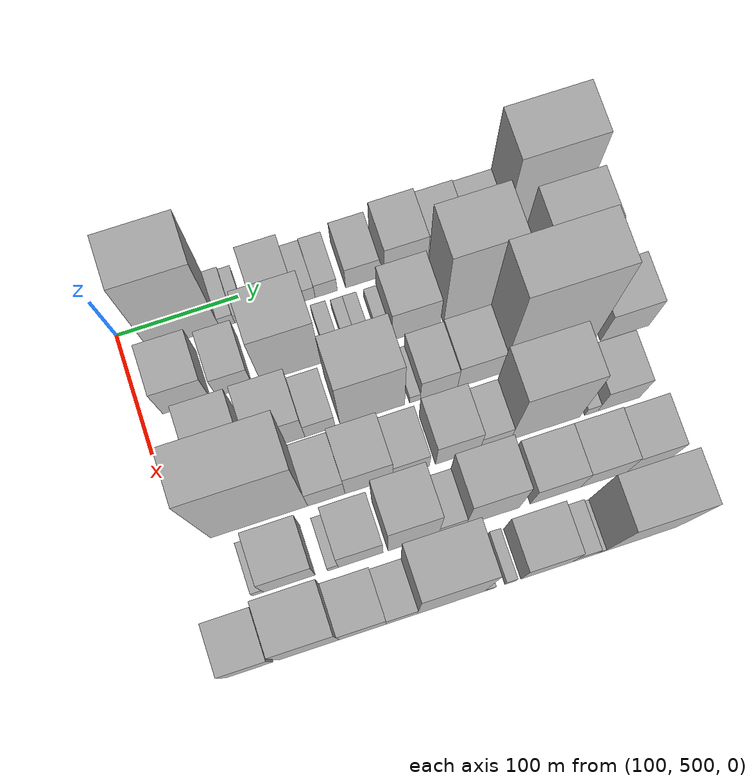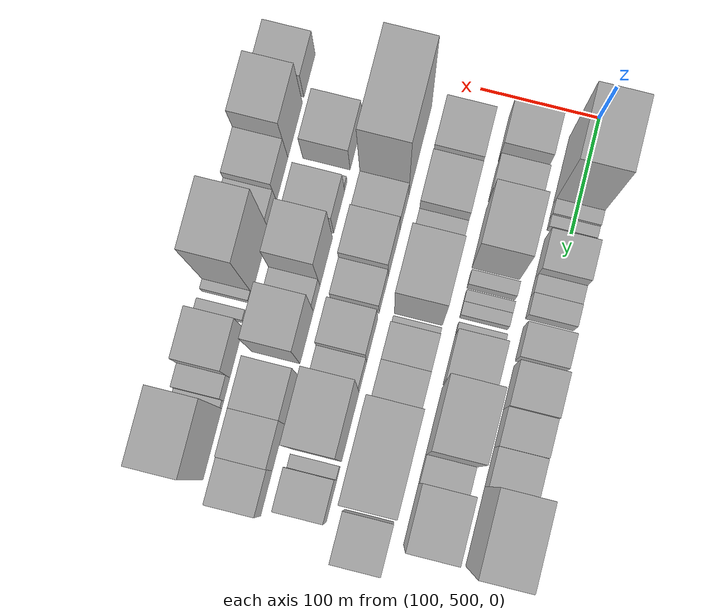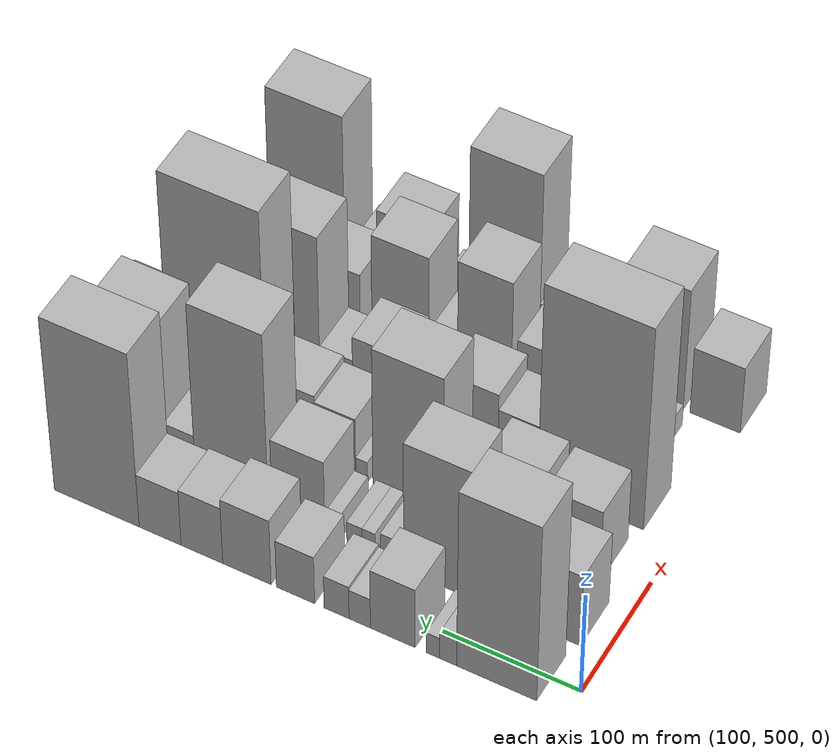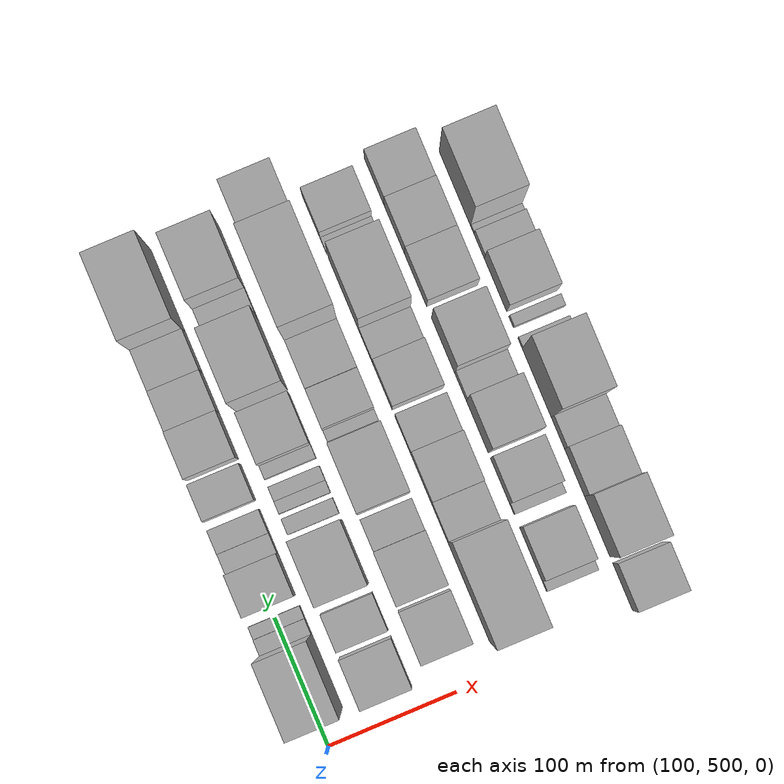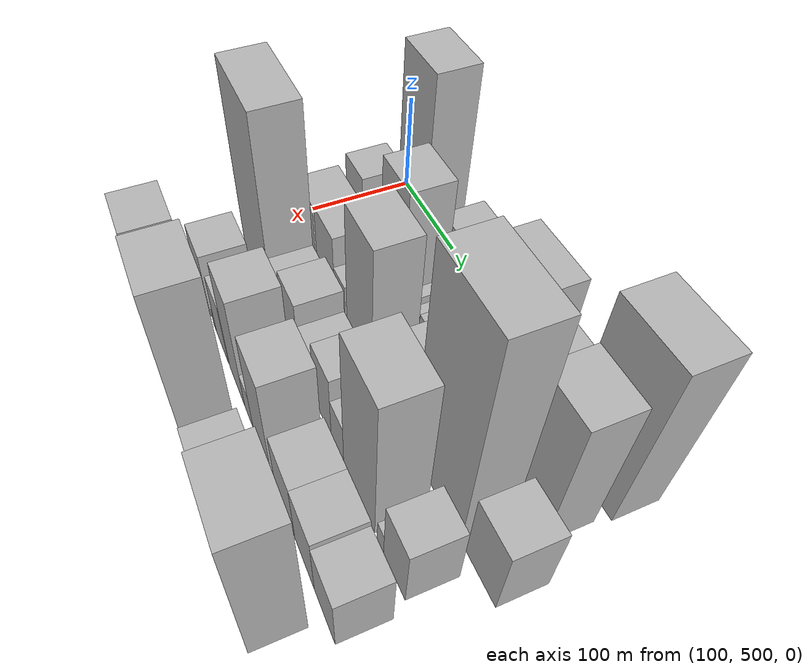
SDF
<sdf version="1.6">
 <world name="default">
  <model name="building_43">
   <static>1</static>
   <pose>100.0000 550.5331 0 0.000000 0.000000 0.000000</pose>
   <link name="link">
    <pose>0 0 88.50 0 0 0</pose>
    <collision name="collision"><geometry><box><size>40.0000 57.6793 177.0000</size></box></geometry></collision>
    <visual name="visual">
     <cast_shadows>0</cast_shadows>
     <geometry><box><size>40.0000 57.6793 177.0000</size></box></geometry>
     <material>
      <script>
       <uri>model://HANNAS_wall/materials/scripts</uri>
       <uri>model://HANNAS_wall/materials/textures</uri>
       <name>vrc/HANNAS_wall</name>
      </script>
     </material>
    </visual>
   </link>
  </model>
  <model name="building_44">
   <static>1</static>
   <pose>100.0000 585.5421 0 0.000000 0.000000 0.000000</pose>
   <link name="link">
    <pose>0 0 13.50 0 0 0</pose>
    <collision name="collision"><geometry><box><size>40.0000 12.3388 27.0000</size></box></geometry></collision>
    <visual name="visual">
     <cast_shadows>0</cast_shadows>
     <geometry><box><size>40.0000 12.3388 27.0000</size></box></geometry>
     <material>
      <script>
       <uri>model://HANNAS_wall/materials/scripts</uri>
       <uri>model://HANNAS_wall/materials/textures</uri>
       <name>vrc/HANNAS_wall</name>
      </script>
     </material>
    </visual>
   </link>
  </model>
  <model name="building_45">
   <static>1</static>
   <pose>100.0000 596.5791 0 0.000000 0.000000 0.000000</pose>
   <link name="link">
    <pose>0 0 10.50 0 0 0</pose>
    <collision name="collision"><geometry><box><size>40.0000 9.7352 21.0000</size></box></geometry></collision>
    <visual name="visual">
     <cast_shadows>0</cast_shadows>
     <geometry><box><size>40.0000 9.7352 21.0000</size></box></geometry>
     <material>
      <script>
       <uri>model://HANNAS_wall/materials/scripts</uri>
       <uri>model://HANNAS_wall/materials/textures</uri>
       <name>vrc/HANNAS_wall</name>
      </script>
     </material>
    </visual>
   </link>
  </model>
  <model name="building_46">
   <static>1</static>
   <pose>100.0000 625.8755 0 0.000000 0.000000 0.000000</pose>
   <link name="link">
    <pose>0 0 30.00 0 0 0</pose>
    <collision name="collision"><geometry><box><size>40.0000 32.8577 60.0000</size></box></geometry></collision>
    <visual name="visual">
     <cast_shadows>0</cast_shadows>
     <geometry><box><size>40.0000 32.8577 60.0000</size></box></geometry>
     <material>
      <script>
       <uri>model://HANNAS_wall/materials/scripts</uri>
       <uri>model://HANNAS_wall/materials/textures</uri>
       <name>vrc/HANNAS_wall</name>
      </script>
     </material>
    </visual>
   </link>
  </model>
  <model name="building_47">
   <static>1</static>
   <pose>100.0000 650.1527 0 0.000000 0.000000 0.000000</pose>
   <link name="link">
    <pose>0 0 15.00 0 0 0</pose>
    <collision name="collision"><geometry><box><size>40.0000 15.6966 30.0000</size></box></geometry></collision>
    <visual name="visual">
     <cast_shadows>0</cast_shadows>
     <geometry><box><size>40.0000 15.6966 30.0000</size></box></geometry>
     <material>
      <script>
       <uri>model://HANNAS_wall/materials/scripts</uri>
       <uri>model://HANNAS_wall/materials/textures</uri>
       <name>vrc/HANNAS_wall</name>
      </script>
     </material>
    </visual>
   </link>
  </model>
  <model name="building_48">
   <static>1</static>
   <pose>100.0000 667.2027 0 0.000000 0.000000 0.000000</pose>
   <link name="link">
    <pose>0 0 16.50 0 0 0</pose>
    <collision name="collision"><geometry><box><size>40.0000 18.4036 33.0000</size></box></geometry></collision>
    <visual name="visual">
     <cast_shadows>0</cast_shadows>
     <geometry><box><size>40.0000 18.4036 33.0000</size></box></geometry>
     <material>
      <script>
       <uri>model://HANNAS_wall/materials/scripts</uri>
       <uri>model://HANNAS_wall/materials/textures</uri>
       <name>vrc/HANNAS_wall</name>
      </script>
     </material>
    </visual>
   </link>
  </model>
  <model name="building_49">
   <static>1</static>
   <pose>100.0000 697.5780 0 0.000000 0.000000 0.000000</pose>
   <link name="link">
    <pose>0 0 24.00 0 0 0</pose>
    <collision name="collision"><geometry><box><size>40.0000 28.3470 48.0000</size></box></geometry></collision>
    <visual name="visual">
     <cast_shadows>0</cast_shadows>
     <geometry><box><size>40.0000 28.3470 48.0000</size></box></geometry>
     <material>
      <script>
       <uri>model://HANNAS_wall/materials/scripts</uri>
       <uri>model://HANNAS_wall/materials/textures</uri>
       <name>vrc/HANNAS_wall</name>
      </script>
     </material>
    </visual>
   </link>
  </model>
  <model name="building_50">
   <static>1</static>
   <pose>100.0000 733.8531 0 0.000000 0.000000 0.000000</pose>
   <link name="link">
    <pose>0 0 33.00 0 0 0</pose>
    <collision name="collision"><geometry><box><size>40.0000 36.2032 66.0000</size></box></geometry></collision>
    <visual name="visual">
     <cast_shadows>0</cast_shadows>
     <geometry><box><size>40.0000 36.2032 66.0000</size></box></geometry>
     <material>
      <script>
       <uri>model://HANNAS_wall/materials/scripts</uri>
       <uri>model://HANNAS_wall/materials/textures</uri>
       <name>vrc/HANNAS_wall</name>
      </script>
     </material>
    </visual>
   </link>
  </model>
  <model name="building_51">
   <static>1</static>
   <pose>100.0000 767.6744 0 0.000000 0.000000 0.000000</pose>
   <link name="link">
    <pose>0 0 28.50 0 0 0</pose>
    <collision name="collision"><geometry><box><size>40.0000 31.4392 57.0000</size></box></geometry></collision>
    <visual name="visual">
     <cast_shadows>0</cast_shadows>
     <geometry><box><size>40.0000 31.4392 57.0000</size></box></geometry>
     <material>
      <script>
       <uri>model://HANNAS_wall/materials/scripts</uri>
       <uri>model://HANNAS_wall/materials/textures</uri>
       <name>vrc/HANNAS_wall</name>
      </script>
     </material>
    </visual>
   </link>
  </model>
  <model name="building_52">
   <static>1</static>
   <pose>100.0000 799.3085 0 0.000000 0.000000 0.000000</pose>
   <link name="link">
    <pose>0 0 27.00 0 0 0</pose>
    <collision name="collision"><geometry><box><size>40.0000 31.8290 54.0000</size></box></geometry></collision>
    <visual name="visual">
     <cast_shadows>0</cast_shadows>
     <geometry><box><size>40.0000 31.8290 54.0000</size></box></geometry>
     <material>
      <script>
       <uri>model://HANNAS_wall/materials/scripts</uri>
       <uri>model://HANNAS_wall/materials/textures</uri>
       <name>vrc/HANNAS_wall</name>
      </script>
     </material>
    </visual>
   </link>
  </model>
  <model name="building_53">
   <static>1</static>
   <pose>100.0000 847.6762 0 0.000000 0.000000 0.000000</pose>
   <link name="link">
    <pose>0 0 87.00 0 0 0</pose>
    <collision name="collision"><geometry><box><size>40.0000 64.9065 174.0000</size></box></geometry></collision>
    <visual name="visual">
     <cast_shadows>0</cast_shadows>
     <geometry><box><size>40.0000 64.9065 174.0000</size></box></geometry>
     <material>
      <script>
       <uri>model://HANNAS_wall/materials/scripts</uri>
       <uri>model://HANNAS_wall/materials/textures</uri>
       <name>vrc/HANNAS_wall</name>
      </script>
     </material>
    </visual>
   </link>
  </model>
  <model name="building_92">
   <static>1</static>
   <pose>152.0000 536.4825 0 0.000000 0.000000 0.000000</pose>
   <link name="link">
    <pose>0 0 36.00 0 0 0</pose>
    <collision name="collision"><geometry><box><size>40.0000 38.8584 72.0000</size></box></geometry></collision>
    <visual name="visual">
     <cast_shadows>0</cast_shadows>
     <geometry><box><size>40.0000 38.8584 72.0000</size></box></geometry>
     <material>
      <script>
       <uri>model://HANNAS_wall/materials/scripts</uri>
       <uri>model://HANNAS_wall/materials/textures</uri>
       <name>vrc/HANNAS_wall</name>
      </script>
     </material>
    </visual>
   </link>
  </model>
  <model name="building_93">
   <static>1</static>
   <pose>152.0000 575.5180 0 0.000000 0.000000 0.000000</pose>
   <link name="link">
    <pose>0 0 28.50 0 0 0</pose>
    <collision name="collision"><geometry><box><size>40.0000 29.2126 57.0000</size></box></geometry></collision>
    <visual name="visual">
     <cast_shadows>0</cast_shadows>
     <geometry><box><size>40.0000 29.2126 57.0000</size></box></geometry>
     <material>
      <script>
       <uri>model://HANNAS_wall/materials/scripts</uri>
       <uri>model://HANNAS_wall/materials/textures</uri>
       <name>vrc/HANNAS_wall</name>
      </script>
     </material>
    </visual>
   </link>
  </model>
  <model name="building_94">
   <static>1</static>
   <pose>152.0000 621.7858 0 0.000000 0.000000 0.000000</pose>
   <link name="link">
    <pose>0 0 64.50 0 0 0</pose>
    <collision name="collision"><geometry><box><size>40.0000 49.3231 129.0000</size></box></geometry></collision>
    <visual name="visual">
     <cast_shadows>0</cast_shadows>
     <geometry><box><size>40.0000 49.3231 129.0000</size></box></geometry>
     <material>
      <script>
       <uri>model://HANNAS_wall/materials/scripts</uri>
       <uri>model://HANNAS_wall/materials/textures</uri>
       <name>vrc/HANNAS_wall</name>
      </script>
     </material>
    </visual>
   </link>
  </model>
  <model name="building_95">
   <static>1</static>
   <pose>152.0000 657.5279 0 0.000000 0.000000 0.000000</pose>
   <link name="link">
    <pose>0 0 13.50 0 0 0</pose>
    <collision name="collision"><geometry><box><size>40.0000 12.1610 27.0000</size></box></geometry></collision>
    <visual name="visual">
     <cast_shadows>0</cast_shadows>
     <geometry><box><size>40.0000 12.1610 27.0000</size></box></geometry>
     <material>
      <script>
       <uri>model://HANNAS_wall/materials/scripts</uri>
       <uri>model://HANNAS_wall/materials/textures</uri>
       <name>vrc/HANNAS_wall</name>
      </script>
     </material>
    </visual>
   </link>
  </model>
  <model name="building_96">
   <static>1</static>
   <pose>152.0000 672.4310 0 0.000000 0.000000 0.000000</pose>
   <link name="link">
    <pose>0 0 12.00 0 0 0</pose>
    <collision name="collision"><geometry><box><size>40.0000 9.6453 24.0000</size></box></geometry></collision>
    <visual name="visual">
     <cast_shadows>0</cast_shadows>
     <geometry><box><size>40.0000 9.6453 24.0000</size></box></geometry>
     <material>
      <script>
       <uri>model://HANNAS_wall/materials/scripts</uri>
       <uri>model://HANNAS_wall/materials/textures</uri>
       <name>vrc/HANNAS_wall</name>
      </script>
     </material>
    </visual>
   </link>
  </model>
  <model name="building_97">
   <static>1</static>
   <pose>152.0000 682.8885 0 0.000000 0.000000 0.000000</pose>
   <link name="link">
    <pose>0 0 12.00 0 0 0</pose>
    <collision name="collision"><geometry><box><size>40.0000 11.2697 24.0000</size></box></geometry></collision>
    <visual name="visual">
     <cast_shadows>0</cast_shadows>
     <geometry><box><size>40.0000 11.2697 24.0000</size></box></geometry>
     <material>
      <script>
       <uri>model://HANNAS_wall/materials/scripts</uri>
       <uri>model://HANNAS_wall/materials/textures</uri>
       <name>vrc/HANNAS_wall</name>
      </script>
     </material>
    </visual>
   </link>
  </model>
  <model name="building_98">
   <static>1</static>
   <pose>152.0000 699.7544 0 0.000000 0.000000 0.000000</pose>
   <link name="link">
    <pose>0 0 12.00 0 0 0</pose>
    <collision name="collision"><geometry><box><size>40.0000 10.4621 24.0000</size></box></geometry></collision>
    <visual name="visual">
     <cast_shadows>0</cast_shadows>
     <geometry><box><size>40.0000 10.4621 24.0000</size></box></geometry>
     <material>
      <script>
       <uri>model://HANNAS_wall/materials/scripts</uri>
       <uri>model://HANNAS_wall/materials/textures</uri>
       <name>vrc/HANNAS_wall</name>
      </script>
     </material>
    </visual>
   </link>
  </model>
  <model name="building_99">
   <static>1</static>
   <pose>152.0000 724.7930 0 0.000000 0.000000 0.000000</pose>
   <link name="link">
    <pose>0 0 37.50 0 0 0</pose>
    <collision name="collision"><geometry><box><size>40.0000 39.6151 75.0000</size></box></geometry></collision>
    <visual name="visual">
     <cast_shadows>0</cast_shadows>
     <geometry><box><size>40.0000 39.6151 75.0000</size></box></geometry>
     <material>
      <script>
       <uri>model://HANNAS_wall/materials/scripts</uri>
       <uri>model://HANNAS_wall/materials/textures</uri>
       <name>vrc/HANNAS_wall</name>
      </script>
     </material>
    </visual>
   </link>
  </model>
  <model name="building_100">
   <static>1</static>
   <pose>152.0000 775.2341 0 0.000000 0.000000 0.000000</pose>
   <link name="link">
    <pose>0 0 88.50 0 0 0</pose>
    <collision name="collision"><geometry><box><size>40.0000 55.2671 177.0000</size></box></geometry></collision>
    <visual name="visual">
     <cast_shadows>0</cast_shadows>
     <geometry><box><size>40.0000 55.2671 177.0000</size></box></geometry>
     <material>
      <script>
       <uri>model://HANNAS_wall/materials/scripts</uri>
       <uri>model://HANNAS_wall/materials/textures</uri>
       <name>vrc/HANNAS_wall</name>
      </script>
     </material>
    </visual>
   </link>
  </model>
  <model name="building_101">
   <static>1</static>
   <pose>152.0000 814.1956 0 0.000000 0.000000 0.000000</pose>
   <link name="link">
    <pose>0 0 22.50 0 0 0</pose>
    <collision name="collision"><geometry><box><size>40.0000 22.6560 45.0000</size></box></geometry></collision>
    <visual name="visual">
     <cast_shadows>0</cast_shadows>
     <geometry><box><size>40.0000 22.6560 45.0000</size></box></geometry>
     <material>
      <script>
       <uri>model://HANNAS_wall/materials/scripts</uri>
       <uri>model://HANNAS_wall/materials/textures</uri>
       <name>vrc/HANNAS_wall</name>
      </script>
     </material>
    </visual>
   </link>
  </model>
  <model name="building_102">
   <static>1</static>
   <pose>152.0000 850.6613 0 0.000000 0.000000 0.000000</pose>
   <link name="link">
    <pose>0 0 72.00 0 0 0</pose>
    <collision name="collision"><geometry><box><size>40.0000 50.2754 144.0000</size></box></geometry></collision>
    <visual name="visual">
     <cast_shadows>0</cast_shadows>
     <geometry><box><size>40.0000 50.2754 144.0000</size></box></geometry>
     <material>
      <script>
       <uri>model://HANNAS_wall/materials/scripts</uri>
       <uri>model://HANNAS_wall/materials/textures</uri>
       <name>vrc/HANNAS_wall</name>
      </script>
     </material>
    </visual>
   </link>
  </model>
  <model name="building_144">
   <static>1</static>
   <pose>204.0000 550.2137 0 0.000000 0.000000 0.000000</pose>
   <link name="link">
    <pose>0 0 36.00 0 0 0</pose>
    <collision name="collision"><geometry><box><size>40.0000 40.9323 72.0000</size></box></geometry></collision>
    <visual name="visual">
     <cast_shadows>0</cast_shadows>
     <geometry><box><size>40.0000 40.9323 72.0000</size></box></geometry>
     <material>
      <script>
       <uri>model://HANNAS_wall/materials/scripts</uri>
       <uri>model://HANNAS_wall/materials/textures</uri>
       <name>vrc/HANNAS_wall</name>
      </script>
     </material>
    </visual>
   </link>
  </model>
  <model name="building_145">
   <static>1</static>
   <pose>204.0000 595.6306 0 0.000000 0.000000 0.000000</pose>
   <link name="link">
    <pose>0 0 37.50 0 0 0</pose>
    <collision name="collision"><geometry><box><size>40.0000 41.9016 75.0000</size></box></geometry></collision>
    <visual name="visual">
     <cast_shadows>0</cast_shadows>
     <geometry><box><size>40.0000 41.9016 75.0000</size></box></geometry>
     <material>
      <script>
       <uri>model://HANNAS_wall/materials/scripts</uri>
       <uri>model://HANNAS_wall/materials/textures</uri>
       <name>vrc/HANNAS_wall</name>
      </script>
     </material>
    </visual>
   </link>
  </model>
  <model name="building_146">
   <static>1</static>
   <pose>204.0000 628.9667 0 0.000000 0.000000 0.000000</pose>
   <link name="link">
    <pose>0 0 21.00 0 0 0</pose>
    <collision name="collision"><geometry><box><size>40.0000 24.7705 42.0000</size></box></geometry></collision>
    <visual name="visual">
     <cast_shadows>0</cast_shadows>
     <geometry><box><size>40.0000 24.7705 42.0000</size></box></geometry>
     <material>
      <script>
       <uri>model://HANNAS_wall/materials/scripts</uri>
       <uri>model://HANNAS_wall/materials/textures</uri>
       <name>vrc/HANNAS_wall</name>
      </script>
     </material>
    </visual>
   </link>
  </model>
  <model name="building_147">
   <static>1</static>
   <pose>204.0000 671.6703 0 0.000000 0.000000 0.000000</pose>
   <link name="link">
    <pose>0 0 69.00 0 0 0</pose>
    <collision name="collision"><geometry><box><size>40.0000 52.6367 138.0000</size></box></geometry></collision>
    <visual name="visual">
     <cast_shadows>0</cast_shadows>
     <geometry><box><size>40.0000 52.6367 138.0000</size></box></geometry>
     <material>
      <script>
       <uri>model://HANNAS_wall/materials/scripts</uri>
       <uri>model://HANNAS_wall/materials/textures</uri>
       <name>vrc/HANNAS_wall</name>
      </script>
     </material>
    </visual>
   </link>
  </model>
  <model name="building_148">
   <static>1</static>
   <pose>204.0000 706.4081 0 0.000000 0.000000 0.000000</pose>
   <link name="link">
    <pose>0 0 10.50 0 0 0</pose>
    <collision name="collision"><geometry><box><size>40.0000 8.8390 21.0000</size></box></geometry></collision>
    <visual name="visual">
     <cast_shadows>0</cast_shadows>
     <geometry><box><size>40.0000 8.8390 21.0000</size></box></geometry>
     <material>
      <script>
       <uri>model://HANNAS_wall/materials/scripts</uri>
       <uri>model://HANNAS_wall/materials/textures</uri>
       <name>vrc/HANNAS_wall</name>
      </script>
     </material>
    </visual>
   </link>
  </model>
  <model name="building_149">
   <static>1</static>
   <pose>204.0000 726.1357 0 0.000000 0.000000 0.000000</pose>
   <link name="link">
    <pose>0 0 30.00 0 0 0</pose>
    <collision name="collision"><geometry><box><size>40.0000 30.6161 60.0000</size></box></geometry></collision>
    <visual name="visual">
     <cast_shadows>0</cast_shadows>
     <geometry><box><size>40.0000 30.6161 60.0000</size></box></geometry>
     <material>
      <script>
       <uri>model://HANNAS_wall/materials/scripts</uri>
       <uri>model://HANNAS_wall/materials/textures</uri>
       <name>vrc/HANNAS_wall</name>
      </script>
     </material>
    </visual>
   </link>
  </model>
  <model name="building_150">
   <static>1</static>
   <pose>204.0000 759.9601 0 0.000000 0.000000 0.000000</pose>
   <link name="link">
    <pose>0 0 33.00 0 0 0</pose>
    <collision name="collision"><geometry><box><size>40.0000 37.0328 66.0000</size></box></geometry></collision>
    <visual name="visual">
     <cast_shadows>0</cast_shadows>
     <geometry><box><size>40.0000 37.0328 66.0000</size></box></geometry>
     <material>
      <script>
       <uri>model://HANNAS_wall/materials/scripts</uri>
       <uri>model://HANNAS_wall/materials/textures</uri>
       <name>vrc/HANNAS_wall</name>
      </script>
     </material>
    </visual>
   </link>
  </model>
  <model name="building_151">
   <static>1</static>
   <pose>204.0000 815.7794 0 0.000000 0.000000 0.000000</pose>
   <link name="link">
    <pose>0 0 112.50 0 0 0</pose>
    <collision name="collision"><geometry><box><size>40.0000 74.6058 225.0000</size></box></geometry></collision>
    <visual name="visual">
     <cast_shadows>0</cast_shadows>
     <geometry><box><size>40.0000 74.6058 225.0000</size></box></geometry>
     <material>
      <script>
       <uri>model://HANNAS_wall/materials/scripts</uri>
       <uri>model://HANNAS_wall/materials/textures</uri>
       <name>vrc/HANNAS_wall</name>
      </script>
     </material>
    </visual>
   </link>
  </model>
  <model name="building_152">
   <static>1</static>
   <pose>204.0000 880.4731 0 0.000000 0.000000 0.000000</pose>
   <link name="link">
    <pose>0 0 37.50 0 0 0</pose>
    <collision name="collision"><geometry><box><size>40.0000 40.7817 75.0000</size></box></geometry></collision>
    <visual name="visual">
     <cast_shadows>0</cast_shadows>
     <geometry><box><size>40.0000 40.7817 75.0000</size></box></geometry>
     <material>
      <script>
       <uri>model://HANNAS_wall/materials/scripts</uri>
       <uri>model://HANNAS_wall/materials/textures</uri>
       <name>vrc/HANNAS_wall</name>
      </script>
     </material>
    </visual>
   </link>
  </model>
  <model name="building_198">
   <static>1</static>
   <pose>256.0000 563.4731 0 0.000000 0.000000 0.000000</pose>
   <link name="link">
    <pose>0 0 100.50 0 0 0</pose>
    <collision name="collision"><geometry><box><size>40.0000 78.0360 201.0000</size></box></geometry></collision>
    <visual name="visual">
     <cast_shadows>0</cast_shadows>
     <geometry><box><size>40.0000 78.0360 201.0000</size></box></geometry>
     <material>
      <script>
       <uri>model://HANNAS_wall/materials/scripts</uri>
       <uri>model://HANNAS_wall/materials/textures</uri>
       <name>vrc/HANNAS_wall</name>
      </script>
     </material>
    </visual>
   </link>
  </model>
  <model name="building_199">
   <static>1</static>
   <pose>256.0000 617.5123 0 0.000000 0.000000 0.000000</pose>
   <link name="link">
    <pose>0 0 30.00 0 0 0</pose>
    <collision name="collision"><geometry><box><size>40.0000 30.0425 60.0000</size></box></geometry></collision>
    <visual name="visual">
     <cast_shadows>0</cast_shadows>
     <geometry><box><size>40.0000 30.0425 60.0000</size></box></geometry>
     <material>
      <script>
       <uri>model://HANNAS_wall/materials/scripts</uri>
       <uri>model://HANNAS_wall/materials/textures</uri>
       <name>vrc/HANNAS_wall</name>
      </script>
     </material>
    </visual>
   </link>
  </model>
  <model name="building_200">
   <static>1</static>
   <pose>256.0000 651.8266 0 0.000000 0.000000 0.000000</pose>
   <link name="link">
    <pose>0 0 37.50 0 0 0</pose>
    <collision name="collision"><geometry><box><size>40.0000 38.5861 75.0000</size></box></geometry></collision>
    <visual name="visual">
     <cast_shadows>0</cast_shadows>
     <geometry><box><size>40.0000 38.5861 75.0000</size></box></geometry>
     <material>
      <script>
       <uri>model://HANNAS_wall/materials/scripts</uri>
       <uri>model://HANNAS_wall/materials/textures</uri>
       <name>vrc/HANNAS_wall</name>
      </script>
     </material>
    </visual>
   </link>
  </model>
  <model name="building_201">
   <static>1</static>
   <pose>256.0000 685.9602 0 0.000000 0.000000 0.000000</pose>
   <link name="link">
    <pose>0 0 25.50 0 0 0</pose>
    <collision name="collision"><geometry><box><size>40.0000 29.6811 51.0000</size></box></geometry></collision>
    <visual name="visual">
     <cast_shadows>0</cast_shadows>
     <geometry><box><size>40.0000 29.6811 51.0000</size></box></geometry>
     <material>
      <script>
       <uri>model://HANNAS_wall/materials/scripts</uri>
       <uri>model://HANNAS_wall/materials/textures</uri>
       <name>vrc/HANNAS_wall</name>
      </script>
     </material>
    </visual>
   </link>
  </model>
  <model name="building_202">
   <static>1</static>
   <pose>256.0000 723.8553 0 0.000000 0.000000 0.000000</pose>
   <link name="link">
    <pose>0 0 36.00 0 0 0</pose>
    <collision name="collision"><geometry><box><size>40.0000 36.1089 72.0000</size></box></geometry></collision>
    <visual name="visual">
     <cast_shadows>0</cast_shadows>
     <geometry><box><size>40.0000 36.1089 72.0000</size></box></geometry>
     <material>
      <script>
       <uri>model://HANNAS_wall/materials/scripts</uri>
       <uri>model://HANNAS_wall/materials/textures</uri>
       <name>vrc/HANNAS_wall</name>
      </script>
     </material>
    </visual>
   </link>
  </model>
  <model name="building_203">
   <static>1</static>
   <pose>256.0000 754.4580 0 0.000000 0.000000 0.000000</pose>
   <link name="link">
    <pose>0 0 24.00 0 0 0</pose>
    <collision name="collision"><geometry><box><size>40.0000 25.0965 48.0000</size></box></geometry></collision>
    <visual name="visual">
     <cast_shadows>0</cast_shadows>
     <geometry><box><size>40.0000 25.0965 48.0000</size></box></geometry>
     <material>
      <script>
       <uri>model://HANNAS_wall/materials/scripts</uri>
       <uri>model://HANNAS_wall/materials/textures</uri>
       <name>vrc/HANNAS_wall</name>
      </script>
     </material>
    </visual>
   </link>
  </model>
  <model name="building_204">
   <static>1</static>
   <pose>256.0000 795.5773 0 0.000000 0.000000 0.000000</pose>
   <link name="link">
    <pose>0 0 78.00 0 0 0</pose>
    <collision name="collision"><geometry><box><size>40.0000 57.1422 156.0000</size></box></geometry></collision>
    <visual name="visual">
     <cast_shadows>0</cast_shadows>
     <geometry><box><size>40.0000 57.1422 156.0000</size></box></geometry>
     <material>
      <script>
       <uri>model://HANNAS_wall/materials/scripts</uri>
       <uri>model://HANNAS_wall/materials/textures</uri>
       <name>vrc/HANNAS_wall</name>
      </script>
     </material>
    </visual>
   </link>
  </model>
  <model name="building_205">
   <static>1</static>
   <pose>256.0000 833.6754 0 0.000000 0.000000 0.000000</pose>
   <link name="link">
    <pose>0 0 12.00 0 0 0</pose>
    <collision name="collision"><geometry><box><size>40.0000 11.0541 24.0000</size></box></geometry></collision>
    <visual name="visual">
     <cast_shadows>0</cast_shadows>
     <geometry><box><size>40.0000 11.0541 24.0000</size></box></geometry>
     <material>
      <script>
       <uri>model://HANNAS_wall/materials/scripts</uri>
       <uri>model://HANNAS_wall/materials/textures</uri>
       <name>vrc/HANNAS_wall</name>
      </script>
     </material>
    </visual>
   </link>
  </model>
  <model name="building_206">
   <static>1</static>
   <pose>256.0000 856.5411 0 0.000000 0.000000 0.000000</pose>
   <link name="link">
    <pose>0 0 33.00 0 0 0</pose>
    <collision name="collision"><geometry><box><size>40.0000 34.6773 66.0000</size></box></geometry></collision>
    <visual name="visual">
     <cast_shadows>0</cast_shadows>
     <geometry><box><size>40.0000 34.6773 66.0000</size></box></geometry>
     <material>
      <script>
       <uri>model://HANNAS_wall/materials/scripts</uri>
       <uri>model://HANNAS_wall/materials/textures</uri>
       <name>vrc/HANNAS_wall</name>
      </script>
     </material>
    </visual>
   </link>
  </model>
  <model name="building_244">
   <static>1</static>
   <pose>308.0000 546.3334 0 0.000000 0.000000 0.000000</pose>
   <link name="link">
    <pose>0 0 10.50 0 0 0</pose>
    <collision name="collision"><geometry><box><size>40.0000 8.8241 21.0000</size></box></geometry></collision>
    <visual name="visual">
     <cast_shadows>0</cast_shadows>
     <geometry><box><size>40.0000 8.8241 21.0000</size></box></geometry>
     <material>
      <script>
       <uri>model://HANNAS_wall/materials/scripts</uri>
       <uri>model://HANNAS_wall/materials/textures</uri>
       <name>vrc/HANNAS_wall</name>
      </script>
     </material>
    </visual>
   </link>
  </model>
  <model name="building_245">
   <static>1</static>
   <pose>308.0000 571.3505 0 0.000000 0.000000 0.000000</pose>
   <link name="link">
    <pose>0 0 36.00 0 0 0</pose>
    <collision name="collision"><geometry><box><size>40.0000 41.2101 72.0000</size></box></geometry></collision>
    <visual name="visual">
     <cast_shadows>0</cast_shadows>
     <geometry><box><size>40.0000 41.2101 72.0000</size></box></geometry>
     <material>
      <script>
       <uri>model://HANNAS_wall/materials/scripts</uri>
       <uri>model://HANNAS_wall/materials/textures</uri>
       <name>vrc/HANNAS_wall</name>
      </script>
     </material>
    </visual>
   </link>
  </model>
  <model name="building_246">
   <static>1</static>
   <pose>308.0000 606.2171 0 0.000000 0.000000 0.000000</pose>
   <link name="link">
    <pose>0 0 10.50 0 0 0</pose>
    <collision name="collision"><geometry><box><size>40.0000 8.5230 21.0000</size></box></geometry></collision>
    <visual name="visual">
     <cast_shadows>0</cast_shadows>
     <geometry><box><size>40.0000 8.5230 21.0000</size></box></geometry>
     <material>
      <script>
       <uri>model://HANNAS_wall/materials/scripts</uri>
       <uri>model://HANNAS_wall/materials/textures</uri>
       <name>vrc/HANNAS_wall</name>
      </script>
     </material>
    </visual>
   </link>
  </model>
  <model name="building_247">
   <static>1</static>
   <pose>308.0000 628.3147 0 0.000000 0.000000 0.000000</pose>
   <link name="link">
    <pose>0 0 34.50 0 0 0</pose>
    <collision name="collision"><geometry><box><size>40.0000 35.6722 69.0000</size></box></geometry></collision>
    <visual name="visual">
     <cast_shadows>0</cast_shadows>
     <geometry><box><size>40.0000 35.6722 69.0000</size></box></geometry>
     <material>
      <script>
       <uri>model://HANNAS_wall/materials/scripts</uri>
       <uri>model://HANNAS_wall/materials/textures</uri>
       <name>vrc/HANNAS_wall</name>
      </script>
     </material>
    </visual>
   </link>
  </model>
  <model name="building_248">
   <static>1</static>
   <pose>308.0000 670.4955 0 0.000000 0.000000 0.000000</pose>
   <link name="link">
    <pose>0 0 61.50 0 0 0</pose>
    <collision name="collision"><geometry><box><size>40.0000 40.6894 123.0000</size></box></geometry></collision>
    <visual name="visual">
     <cast_shadows>0</cast_shadows>
     <geometry><box><size>40.0000 40.6894 123.0000</size></box></geometry>
     <material>
      <script>
       <uri>model://HANNAS_wall/materials/scripts</uri>
       <uri>model://HANNAS_wall/materials/textures</uri>
       <name>vrc/HANNAS_wall</name>
      </script>
     </material>
    </visual>
   </link>
  </model>
  <model name="building_249">
   <static>1</static>
   <pose>308.0000 701.7161 0 0.000000 0.000000 0.000000</pose>
   <link name="link">
    <pose>0 0 21.00 0 0 0</pose>
    <collision name="collision"><geometry><box><size>40.0000 21.7518 42.0000</size></box></geometry></collision>
    <visual name="visual">
     <cast_shadows>0</cast_shadows>
     <geometry><box><size>40.0000 21.7518 42.0000</size></box></geometry>
     <material>
      <script>
       <uri>model://HANNAS_wall/materials/scripts</uri>
       <uri>model://HANNAS_wall/materials/textures</uri>
       <name>vrc/HANNAS_wall</name>
      </script>
     </material>
    </visual>
   </link>
  </model>
  <model name="building_250">
   <static>1</static>
   <pose>308.0000 734.3575 0 0.000000 0.000000 0.000000</pose>
   <link name="link">
    <pose>0 0 57.00 0 0 0</pose>
    <collision name="collision"><geometry><box><size>40.0000 43.5310 114.0000</size></box></geometry></collision>
    <visual name="visual">
     <cast_shadows>0</cast_shadows>
     <geometry><box><size>40.0000 43.5310 114.0000</size></box></geometry>
     <material>
      <script>
       <uri>model://HANNAS_wall/materials/scripts</uri>
       <uri>model://HANNAS_wall/materials/textures</uri>
       <name>vrc/HANNAS_wall</name>
      </script>
     </material>
    </visual>
   </link>
  </model>
  <model name="building_251">
   <static>1</static>
   <pose>308.0000 785.6927 0 0.000000 0.000000 0.000000</pose>
   <link name="link">
    <pose>0 0 34.50 0 0 0</pose>
    <collision name="collision"><geometry><box><size>40.0000 41.1392 69.0000</size></box></geometry></collision>
    <visual name="visual">
     <cast_shadows>0</cast_shadows>
     <geometry><box><size>40.0000 41.1392 69.0000</size></box></geometry>
     <material>
      <script>
       <uri>model://HANNAS_wall/materials/scripts</uri>
       <uri>model://HANNAS_wall/materials/textures</uri>
       <name>vrc/HANNAS_wall</name>
      </script>
     </material>
    </visual>
   </link>
  </model>
  <model name="building_252">
   <static>1</static>
   <pose>308.0000 825.3626 0 0.000000 0.000000 0.000000</pose>
   <link name="link">
    <pose>0 0 34.50 0 0 0</pose>
    <collision name="collision"><geometry><box><size>40.0000 38.2006 69.0000</size></box></geometry></collision>
    <visual name="visual">
     <cast_shadows>0</cast_shadows>
     <geometry><box><size>40.0000 38.2006 69.0000</size></box></geometry>
     <material>
      <script>
       <uri>model://HANNAS_wall/materials/scripts</uri>
       <uri>model://HANNAS_wall/materials/textures</uri>
       <name>vrc/HANNAS_wall</name>
      </script>
     </material>
    </visual>
   </link>
  </model>
  <model name="building_253">
   <static>1</static>
   <pose>308.0000 863.0843 0 0.000000 0.000000 0.000000</pose>
   <link name="link">
    <pose>0 0 31.50 0 0 0</pose>
    <collision name="collision"><geometry><box><size>40.0000 37.2428 63.0000</size></box></geometry></collision>
    <visual name="visual">
     <cast_shadows>0</cast_shadows>
     <geometry><box><size>40.0000 37.2428 63.0000</size></box></geometry>
     <material>
      <script>
       <uri>model://HANNAS_wall/materials/scripts</uri>
       <uri>model://HANNAS_wall/materials/textures</uri>
       <name>vrc/HANNAS_wall</name>
      </script>
     </material>
    </visual>
   </link>
  </model>
  <model name="building_294">
   <static>1</static>
   <pose>360.0000 523.4971 0 0.000000 0.000000 0.000000</pose>
   <link name="link">
    <pose>0 0 33.00 0 0 0</pose>
    <collision name="collision"><geometry><box><size>40.0000 37.2585 66.0000</size></box></geometry></collision>
    <visual name="visual">
     <cast_shadows>0</cast_shadows>
     <geometry><box><size>40.0000 37.2585 66.0000</size></box></geometry>
     <material>
      <script>
       <uri>model://HANNAS_wall/materials/scripts</uri>
       <uri>model://HANNAS_wall/materials/textures</uri>
       <name>vrc/HANNAS_wall</name>
      </script>
     </material>
    </visual>
   </link>
  </model>
  <model name="building_295">
   <static>1</static>
   <pose>360.0000 570.8080 0 0.000000 0.000000 0.000000</pose>
   <link name="link">
    <pose>0 0 60.00 0 0 0</pose>
    <collision name="collision"><geometry><box><size>40.0000 47.3633 120.0000</size></box></geometry></collision>
    <visual name="visual">
     <cast_shadows>0</cast_shadows>
     <geometry><box><size>40.0000 47.3633 120.0000</size></box></geometry>
     <material>
      <script>
       <uri>model://HANNAS_wall/materials/scripts</uri>
       <uri>model://HANNAS_wall/materials/textures</uri>
       <name>vrc/HANNAS_wall</name>
      </script>
     </material>
    </visual>
   </link>
  </model>
  <model name="building_296">
   <static>1</static>
   <pose>360.0000 613.0542 0 0.000000 0.000000 0.000000</pose>
   <link name="link">
    <pose>0 0 34.50 0 0 0</pose>
    <collision name="collision"><geometry><box><size>40.0000 37.1290 69.0000</size></box></geometry></collision>
    <visual name="visual">
     <cast_shadows>0</cast_shadows>
     <geometry><box><size>40.0000 37.1290 69.0000</size></box></geometry>
     <material>
      <script>
       <uri>model://HANNAS_wall/materials/scripts</uri>
       <uri>model://HANNAS_wall/materials/textures</uri>
       <name>vrc/HANNAS_wall</name>
      </script>
     </material>
    </visual>
   </link>
  </model>
  <model name="building_297">
   <static>1</static>
   <pose>360.0000 643.9427 0 0.000000 0.000000 0.000000</pose>
   <link name="link">
    <pose>0 0 24.00 0 0 0</pose>
    <collision name="collision"><geometry><box><size>40.0000 24.6480 48.0000</size></box></geometry></collision>
    <visual name="visual">
     <cast_shadows>0</cast_shadows>
     <geometry><box><size>40.0000 24.6480 48.0000</size></box></geometry>
     <material>
      <script>
       <uri>model://HANNAS_wall/materials/scripts</uri>
       <uri>model://HANNAS_wall/materials/textures</uri>
       <name>vrc/HANNAS_wall</name>
      </script>
     </material>
    </visual>
   </link>
  </model>
  <model name="building_298">
   <static>1</static>
   <pose>360.0000 683.2698 0 0.000000 0.000000 0.000000</pose>
   <link name="link">
    <pose>0 0 87.00 0 0 0</pose>
    <collision name="collision"><geometry><box><size>40.0000 54.0060 174.0000</size></box></geometry></collision>
    <visual name="visual">
     <cast_shadows>0</cast_shadows>
     <geometry><box><size>40.0000 54.0060 174.0000</size></box></geometry>
     <material>
      <script>
       <uri>model://HANNAS_wall/materials/scripts</uri>
       <uri>model://HANNAS_wall/materials/textures</uri>
       <name>vrc/HANNAS_wall</name>
      </script>
     </material>
    </visual>
   </link>
  </model>
  <model name="building_299">
   <static>1</static>
   <pose>360.0000 714.3345 0 0.000000 0.000000 0.000000</pose>
   <link name="link">
    <pose>0 0 9.00 0 0 0</pose>
    <collision name="collision"><geometry><box><size>40.0000 8.1234 18.0000</size></box></geometry></collision>
    <visual name="visual">
     <cast_shadows>0</cast_shadows>
     <geometry><box><size>40.0000 8.1234 18.0000</size></box></geometry>
     <material>
      <script>
       <uri>model://HANNAS_wall/materials/scripts</uri>
       <uri>model://HANNAS_wall/materials/textures</uri>
       <name>vrc/HANNAS_wall</name>
      </script>
     </material>
    </visual>
   </link>
  </model>
  <model name="building_300">
   <static>1</static>
   <pose>360.0000 730.8261 0 0.000000 0.000000 0.000000</pose>
   <link name="link">
    <pose>0 0 10.50 0 0 0</pose>
    <collision name="collision"><geometry><box><size>40.0000 8.8599 21.0000</size></box></geometry></collision>
    <visual name="visual">
     <cast_shadows>0</cast_shadows>
     <geometry><box><size>40.0000 8.8599 21.0000</size></box></geometry>
     <material>
      <script>
       <uri>model://HANNAS_wall/materials/scripts</uri>
       <uri>model://HANNAS_wall/materials/textures</uri>
       <name>vrc/HANNAS_wall</name>
      </script>
     </material>
    </visual>
   </link>
  </model>
  <model name="building_301">
   <static>1</static>
   <pose>360.0000 760.1411 0 0.000000 0.000000 0.000000</pose>
   <link name="link">
    <pose>0 0 37.50 0 0 0</pose>
    <collision name="collision"><geometry><box><size>40.0000 41.7701 75.0000</size></box></geometry></collision>
    <visual name="visual">
     <cast_shadows>0</cast_shadows>
     <geometry><box><size>40.0000 41.7701 75.0000</size></box></geometry>
     <material>
      <script>
       <uri>model://HANNAS_wall/materials/scripts</uri>
       <uri>model://HANNAS_wall/materials/textures</uri>
       <name>vrc/HANNAS_wall</name>
      </script>
     </material>
    </visual>
   </link>
  </model>
  <model name="building_302">
   <static>1</static>
   <pose>360.0000 790.6929 0 0.000000 0.000000 0.000000</pose>
   <link name="link">
    <pose>0 0 16.50 0 0 0</pose>
    <collision name="collision"><geometry><box><size>40.0000 19.3336 33.0000</size></box></geometry></collision>
    <visual name="visual">
     <cast_shadows>0</cast_shadows>
     <geometry><box><size>40.0000 19.3336 33.0000</size></box></geometry>
     <material>
      <script>
       <uri>model://HANNAS_wall/materials/scripts</uri>
       <uri>model://HANNAS_wall/materials/textures</uri>
       <name>vrc/HANNAS_wall</name>
      </script>
     </material>
    </visual>
   </link>
  </model>
  <model name="building_303">
   <static>1</static>
   <pose>360.0000 803.4122 0 0.000000 0.000000 0.000000</pose>
   <link name="link">
    <pose>0 0 7.50 0 0 0</pose>
    <collision name="collision"><geometry><box><size>40.0000 6.1050 15.0000</size></box></geometry></collision>
    <visual name="visual">
     <cast_shadows>0</cast_shadows>
     <geometry><box><size>40.0000 6.1050 15.0000</size></box></geometry>
     <material>
      <script>
       <uri>model://HANNAS_wall/materials/scripts</uri>
       <uri>model://HANNAS_wall/materials/textures</uri>
       <name>vrc/HANNAS_wall</name>
      </script>
     </material>
    </visual>
   </link>
  </model>
  <model name="building_304">
   <static>1</static>
   <pose>360.0000 835.9484 0 0.000000 0.000000 0.000000</pose>
   <link name="link">
    <pose>0 0 76.50 0 0 0</pose>
    <collision name="collision"><geometry><box><size>40.0000 58.9673 153.0000</size></box></geometry></collision>
    <visual name="visual">
     <cast_shadows>0</cast_shadows>
     <geometry><box><size>40.0000 58.9673 153.0000</size></box></geometry>
     <material>
      <script>
       <uri>model://HANNAS_wall/materials/scripts</uri>
       <uri>model://HANNAS_wall/materials/textures</uri>
       <name>vrc/HANNAS_wall</name>
      </script>
     </material>
    </visual>
   </link>
  </model>
 </world>
</sdf>
